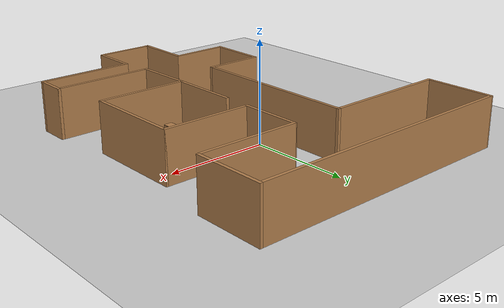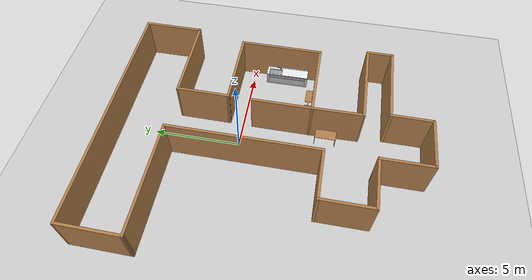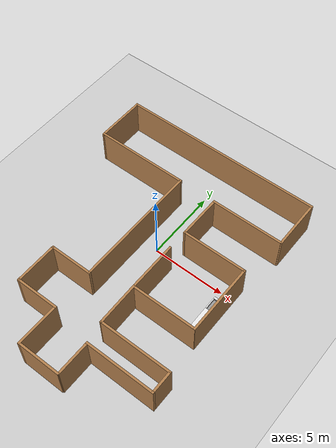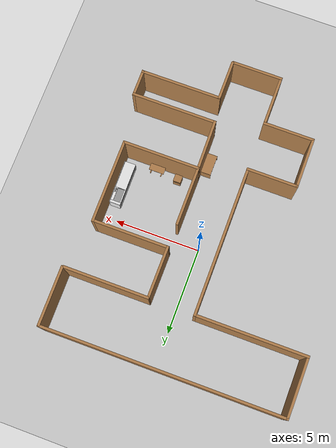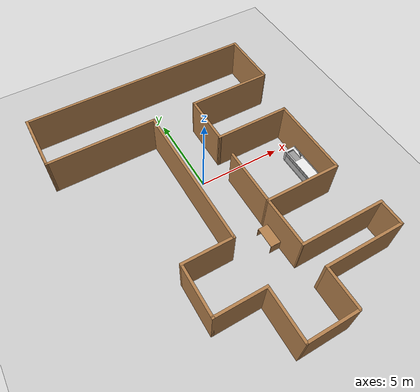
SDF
<sdf version="1.6">
 <world name="default">
  <model name="ground_plane">
   <static>1</static>
   <link name="link">
    <collision name="collision">
     <geometry><plane><normal>0 0 1</normal><size>100 100</size></plane></geometry>
     <surface><friction><ode><mu>100</mu><mu2>50</mu2></ode></friction></surface>
    </collision>
    <visual name="visual">
     <cast_shadows>0</cast_shadows>
     <geometry><plane><normal>0 0 1</normal><size>100 100</size></plane></geometry>
     <material>
      <script><uri>file://media/materials/scripts/gazebo.material</uri><name>Gazebo/Grey</name></script>
     </material>
    </visual>
   </link>
  </model>
  <model name="JUSTINAS_LAB3">
   <pose>-0.50094 -1.66418 0 0 -0 0</pose>
   <link name="Wall_102">
    <collision name="Wall_102_Collision">
     <geometry><box><size>6.5 0.15 2.5</size></box></geometry>
     <pose>0 0 1.25 0 -0 0</pose>
    </collision>
    <visual name="Wall_102_Visual">
     <pose>0 0 1.25 0 -0 0</pose>
     <geometry><box><size>6.5 0.15 2.5</size></box></geometry>
     <material>
      <script><uri>file://media/materials/scripts/gazebo.material</uri><name>Gazebo/Wood</name></script>
      <ambient>1 1 1 1</ambient>
     </material>
     <meta><layer>0</layer></meta>
    </visual>
    <pose>-3.78934 5.45538 0 0 -0 -6.2e-05</pose>
   </link>
   <link name="Wall_104">
    <collision name="Wall_104_Collision">
     <geometry><box><size>8.75 0.15 2.5</size></box></geometry>
     <pose>0 0 1.25 0 -0 0</pose>
    </collision>
    <visual name="Wall_104_Visual">
     <pose>0 0 1.25 0 -0 0</pose>
     <geometry><box><size>8.75 0.15 2.5</size></box></geometry>
     <material>
      <script><uri>file://media/materials/scripts/gazebo.material</uri><name>Gazebo/Wood</name></script>
      <ambient>1 1 1 1</ambient>
     </material>
     <meta><layer>0</layer></meta>
    </visual>
    <pose>-0.614387 1.15519 0 0 -0 -1.5708</pose>
   </link>
   <link name="Wall_106">
    <collision name="Wall_106_Collision">
     <geometry><box><size>3 0.15 2.5</size></box></geometry>
     <pose>0 0 1.25 0 -0 0</pose>
    </collision>
    <visual name="Wall_106_Visual">
     <pose>0 0 1.25 0 -0 0</pose>
     <geometry><box><size>3 0.15 2.5</size></box></geometry>
     <material>
      <script><uri>file://media/materials/scripts/gazebo.material</uri><name>Gazebo/Wood</name></script>
      <ambient>1 1 1 1</ambient>
     </material>
     <meta><layer>0</layer></meta>
    </visual>
    <pose>-2.03939 -3.14481 0 0 -0 3.14159</pose>
   </link>
   <link name="Wall_108">
    <collision name="Wall_108_Collision">
     <geometry><box><size>3 0.15 2.5</size></box></geometry>
     <pose>0 0 1.25 0 -0 0</pose>
    </collision>
    <visual name="Wall_108_Visual">
     <pose>0 0 1.25 0 -0 0</pose>
     <geometry><box><size>3 0.15 2.5</size></box></geometry>
     <material>
      <script><uri>file://media/materials/scripts/gazebo.material</uri><name>Gazebo/Wood</name></script>
      <ambient>1 1 1 1</ambient>
     </material>
     <meta><layer>0</layer></meta>
    </visual>
    <pose>-3.46439 -4.56981 0 0 -0 -1.5708</pose>
   </link>
   <link name="Wall_110">
    <collision name="Wall_110_Collision">
     <geometry><box><size>3 0.15 2.5</size></box></geometry>
     <pose>0 0 1.25 0 -0 0</pose>
    </collision>
    <visual name="Wall_110_Visual">
     <pose>0 0 1.25 0 -0 0</pose>
     <geometry><box><size>3 0.15 2.5</size></box></geometry>
     <material>
      <script><uri>file://media/materials/scripts/gazebo.material</uri><name>Gazebo/Wood</name></script>
      <ambient>1 1 1 1</ambient>
     </material>
     <meta><layer>0</layer></meta>
    </visual>
    <pose>-2.03939 -5.99481 0 0 -0 0</pose>
   </link>
   <link name="Wall_112">
    <collision name="Wall_112_Collision">
     <geometry><box><size>3 0.15 2.5</size></box></geometry>
     <pose>0 0 1.25 0 -0 0</pose>
    </collision>
    <visual name="Wall_112_Visual">
     <pose>0 0 1.25 0 -0 0</pose>
     <geometry><box><size>3 0.15 2.5</size></box></geometry>
     <material>
      <script><uri>file://media/materials/scripts/gazebo.material</uri><name>Gazebo/Wood</name></script>
      <ambient>1 1 1 1</ambient>
     </material>
     <meta><layer>0</layer></meta>
    </visual>
    <pose>-0.614387 -7.41981 0 0 -0 -1.5708</pose>
   </link>
   <link name="Wall_114">
    <collision name="Wall_114_Collision">
     <geometry><box><size>3 0.15 2.5</size></box></geometry>
     <pose>0 0 1.25 0 -0 0</pose>
    </collision>
    <visual name="Wall_114_Visual">
     <pose>0 0 1.25 0 -0 0</pose>
     <geometry><box><size>3 0.15 2.5</size></box></geometry>
     <material>
      <script><uri>file://media/materials/scripts/gazebo.material</uri><name>Gazebo/Wood</name></script>
      <ambient>1 1 1 1</ambient>
     </material>
     <meta><layer>0</layer></meta>
    </visual>
    <pose>0.810613 -8.84481 0 0 -0 0</pose>
   </link>
   <link name="Wall_116">
    <collision name="Wall_116_Collision">
     <geometry><box><size>3.53885 0.15 2.5</size></box></geometry>
     <pose>0 0 1.25 0 -0 0</pose>
    </collision>
    <visual name="Wall_116_Visual">
     <pose>0 0 1.25 0 -0 0</pose>
     <geometry><box><size>3.53885 0.15 2.5</size></box></geometry>
     <material>
      <script><uri>file://media/materials/scripts/gazebo.material</uri><name>Gazebo/Wood</name></script>
      <ambient>1 1 1 1</ambient>
     </material>
     <meta><layer>0</layer></meta>
    </visual>
    <pose>-6.95419 7.14997 0 0 -0 -1.57676</pose>
   </link>
   <link name="Wall_118">
    <collision name="Wall_118_Collision">
     <geometry><box><size>3.5 0.15 2.5</size></box></geometry>
     <pose>0 0 1.25 0 -0 0</pose>
    </collision>
    <visual name="Wall_118_Visual">
     <pose>0 0 1.25 0 -0 0</pose>
     <geometry><box><size>3.5 0.15 2.5</size></box></geometry>
     <material>
      <script><uri>file://media/materials/scripts/gazebo.material</uri><name>Gazebo/Wood</name></script>
      <ambient>1 1 1 1</ambient>
     </material>
     <meta><layer>0</layer></meta>
    </visual>
    <pose>6.96473 7.1669 0 0 -0 -1.5708</pose>
   </link>
   <link name="Wall_143">
    <collision name="Wall_143_Collision">
     <geometry><box><size>4.5 0.15 2.5</size></box></geometry>
     <pose>0 0 1.25 0 -0 0</pose>
    </collision>
    <visual name="Wall_143_Visual">
     <pose>0 0 1.25 0 -0 0</pose>
     <geometry><box><size>4.5 0.15 2.5</size></box></geometry>
     <material>
      <script><uri>file://media/materials/scripts/gazebo.material</uri><name>Gazebo/Wood</name></script>
      <ambient>1 1 1 1</ambient>
     </material>
     <meta><layer>0</layer></meta>
    </visual>
    <pose>4.1917 2.51558 0 0 -0 0</pose>
   </link>
   <link name="Wall_145">
    <collision name="Wall_145_Collision">
     <geometry><box><size>4.9 0.15 2.5</size></box></geometry>
     <pose>0 0 1.25 0 -0 0</pose>
    </collision>
    <visual name="Wall_145_Visual">
     <pose>0 0 1.25 0 -0 0</pose>
     <geometry><box><size>4.9 0.15 2.5</size></box></geometry>
     <material>
      <script><uri>file://media/materials/scripts/gazebo.material</uri><name>Gazebo/Wood</name></script>
      <ambient>1 1 1 1</ambient>
     </material>
     <meta><layer>0</layer></meta>
    </visual>
    <pose>6.3667 0.140581 0 0 -0 -1.5708</pose>
   </link>
   <link name="Wall_18">
    <collision name="Wall_18_Collision">
     <geometry><box><size>3.5 0.15 2.5</size></box></geometry>
     <pose>0 0 1.25 0 -0 0</pose>
    </collision>
    <visual name="Wall_18_Visual">
     <pose>0 0 1.25 0 -0 0</pose>
     <geometry><box><size>3.5 0.15 2.5</size></box></geometry>
     <material>
      <script><uri>file://media/materials/scripts/gazebo.material</uri><name>Gazebo/Wood</name></script>
      <ambient>1 1 1 1</ambient>
     </material>
     <meta><layer>0</layer></meta>
    </visual>
    <pose>1.99085 -0.569616 0 0 -0 1.5707</pose>
   </link>
   <link name="Wall_26">
    <collision name="Wall_26_Collision">
     <geometry><box><size>4.5 0.15 2.5</size></box></geometry>
     <pose>0 0 1.25 0 -0 0</pose>
    </collision>
    <visual name="Wall_26_Visual">
     <pose>0 0 1.25 0 -0 0</pose>
     <geometry><box><size>4.5 0.15 2.5</size></box></geometry>
     <material>
      <script><uri>file://media/materials/scripts/gazebo.material</uri><name>Gazebo/Wood</name></script>
      <ambient>1 1 1 1</ambient>
     </material>
     <meta><layer>0</layer></meta>
    </visual>
    <pose>4.1657 -2.24442 0 0 -0 0</pose>
   </link>
   <link name="Wall_32">
    <collision name="Wall_32_Collision">
     <geometry><box><size>3.08927 0.15 2.5</size></box></geometry>
     <pose>0 0 1.25 0 -0 0</pose>
    </collision>
    <visual name="Wall_32_Visual">
     <pose>0 0 1.25 0 -0 0</pose>
     <geometry><box><size>3.08927 0.15 2.5</size></box></geometry>
     <material>
      <script><uri>file://media/materials/scripts/gazebo.material</uri><name>Gazebo/Wood</name></script>
      <ambient>1 1 1 1</ambient>
     </material>
     <meta><layer>0</layer></meta>
    </visual>
    <pose>2.02616 3.98538 0 0 -0 1.56436</pose>
   </link>
   <link name="Wall_34">
    <collision name="Wall_34_Collision">
     <geometry><box><size>5 0.15 2.5</size></box></geometry>
     <pose>0 0 1.25 0 -0 0</pose>
    </collision>
    <visual name="Wall_34_Visual">
     <pose>0 0 1.25 0 -0 0</pose>
     <geometry><box><size>5 0.15 2.5</size></box></geometry>
     <material>
      <script><uri>file://media/materials/scripts/gazebo.material</uri><name>Gazebo/Wood</name></script>
      <ambient>1 1 1 1</ambient>
     </material>
     <meta><layer>0</layer></meta>
    </visual>
    <pose>4.46061 5.45519 0 0 -0 0</pose>
   </link>
   <link name="Wall_49">
    <collision name="Wall_49_Collision">
     <geometry><box><size>14.0588 0.15 2.5</size></box></geometry>
     <pose>0 0 1.25 0 -0 0</pose>
    </collision>
    <visual name="Wall_49_Visual">
     <pose>0 0 1.25 0 -0 0</pose>
     <geometry><box><size>14.0588 0.15 2.5</size></box></geometry>
     <material>
      <script><uri>file://media/materials/scripts/gazebo.material</uri><name>Gazebo/Wood</name></script>
      <ambient>1 1 1 1</ambient>
     </material>
     <meta><layer>0</layer></meta>
    </visual>
    <pose>0.010323 8.84313 0 0 -0 3.14141</pose>
   </link>
   <link name="Wall_65">
    <collision name="Wall_65_Collision">
     <geometry><box><size>3.00035 0.15 2.5</size></box></geometry>
     <pose>0 0 1.25 0 -0 0</pose>
    </collision>
    <visual name="Wall_65_Visual">
     <pose>0 0 1.25 0 -0 0</pose>
     <geometry><box><size>3.00035 0.15 2.5</size></box></geometry>
     <material>
      <script><uri>file://media/materials/scripts/gazebo.material</uri><name>Gazebo/Wood</name></script>
      <ambient>1 1 1 1</ambient>
     </material>
     <meta><layer>0</layer></meta>
    </visual>
    <pose>2.01316 -3.66962 0 0 -0 -1.55504</pose>
   </link>
   <link name="Wall_67">
    <collision name="Wall_67_Collision">
     <geometry><box><size>5 0.15 2.5</size></box></geometry>
     <pose>0 0 1.25 0 -0 0</pose>
    </collision>
    <visual name="Wall_67_Visual">
     <pose>0 0 1.25 0 -0 0</pose>
     <geometry><box><size>5 0.15 2.5</size></box></geometry>
     <material>
      <script><uri>file://media/materials/scripts/gazebo.material</uri><name>Gazebo/Wood</name></script>
      <ambient>1 1 1 1</ambient>
     </material>
     <meta><layer>0</layer></meta>
    </visual>
    <pose>4.46061 -5.09481 0 0 -0 0</pose>
   </link>
   <link name="Wall_69">
    <collision name="Wall_69_Collision">
     <geometry><box><size>1.6 0.15 2.5</size></box></geometry>
     <pose>0 0 1.25 0 -0 0</pose>
    </collision>
    <visual name="Wall_69_Visual">
     <pose>0 0 1.25 0 -0 0</pose>
     <geometry><box><size>1.6 0.15 2.5</size></box></geometry>
     <material>
      <script><uri>file://media/materials/scripts/gazebo.material</uri><name>Gazebo/Wood</name></script>
      <ambient>1 1 1 1</ambient>
     </material>
     <meta><layer>0</layer></meta>
    </visual>
    <pose>6.88561 -5.81981 0 0 -0 -1.5708</pose>
   </link>
   <link name="Wall_76">
    <collision name="Wall_76_Collision">
     <geometry><box><size>4.75 0.15 2.5</size></box></geometry>
     <pose>0 0 1.25 0 -0 0</pose>
    </collision>
    <visual name="Wall_76_Visual">
     <pose>0 0 1.25 0 -0 0</pose>
     <geometry><box><size>4.75 0.15 2.5</size></box></geometry>
     <material>
      <script><uri>file://media/materials/scripts/gazebo.material</uri><name>Gazebo/Wood</name></script>
      <ambient>1 1 1 1</ambient>
     </material>
     <meta><layer>0</layer></meta>
    </visual>
    <pose>4.58561 -6.54481 0 0 -0 3.14159</pose>
   </link>
   <link name="Wall_77">
    <collision name="Wall_77_Collision">
     <geometry><box><size>2.4 0.15 2.5</size></box></geometry>
     <pose>0 0 1.25 0 -0 0</pose>
    </collision>
    <visual name="Wall_77_Visual">
     <pose>0 0 1.25 0 -0 0</pose>
     <geometry><box><size>2.4 0.15 2.5</size></box></geometry>
     <material>
      <script><uri>file://media/materials/scripts/gazebo.material</uri><name>Gazebo/Wood</name></script>
      <ambient>1 1 1 1</ambient>
     </material>
     <meta><layer>0</layer></meta>
    </visual>
    <pose>2.28561 -7.66981 0 0 -0 -1.5708</pose>
   </link>
   <static>1</static>
  </model>
  <model name="office_desk">
   <link name="link">
    <inertial>
     <mass>10</mass>
     <inertia><ixx>1</ixx><ixy>0</ixy><ixz>0</ixz><iyy>1</iyy><iyz>0</iyz><izz>1</izz></inertia>
    </inertial>
    <visual name="top_board">
     <pose>-0.3 0.6 0.69 0 -0 0</pose>
     <geometry><box><size>0.6 1.2 0.02</size></box></geometry>
     <material>
      <script>
       <uri>model://base_materials/wood/scripts/wood.material</uri>
       <name>base_materials/dark_wood</name>
      </script>
     </material>
    </visual>
    <collision name="collision_top_board">
     <pose>-0.3 0.6 0.69 0 -0 0</pose>
     <geometry><box><size>0.6 1.2 0.02</size></box></geometry>
    </collision>
    <visual name="left_board">
     <pose>-0.3 0.01 0.34 0 -0 0</pose>
     <geometry><box><size>0.6 0.02 0.68</size></box></geometry>
     <material>
      <script>
       <uri>model://base_materials/wood/scripts/wood.material</uri>
       <name>base_materials/dark_wood</name>
      </script>
     </material>
    </visual>
    <collision name="collision_left_board">
     <pose>-0.3 0.01 0.34 0 -0 0</pose>
     <geometry><box><size>0.6 0.02 0.68</size></box></geometry>
    </collision>
    <visual name="right_board">
     <pose>-0.3 1.19 0.34 0 -0 0</pose>
     <geometry><box><size>0.6 0.02 0.68</size></box></geometry>
     <material>
      <script>
       <uri>model://base_materials/wood/scripts/wood.material</uri>
       <name>base_materials/dark_wood</name>
      </script>
     </material>
    </visual>
    <collision name="collision_right_board">
     <pose>-0.3 1.19 0.34 0 -0 0</pose>
     <geometry><box><size>0.6 0.02 0.68</size></box></geometry>
    </collision>
    <visual name="center_board">
     <pose>-0.14 0.6 0.49 0 -0 0</pose>
     <geometry><box><size>0.02 1.16 0.4</size></box></geometry>
     <material>
      <script>
       <uri>model://base_materials/wood/scripts/wood.material</uri>
       <name>base_materials/dark_wood</name>
      </script>
     </material>
    </visual>
    <collision name="ollision_center_board">
     <pose>-0.14 0.6 0.49 0 -0 0</pose>
     <geometry><box><size>0.02 1.16 0.4</size></box></geometry>
    </collision>
    <velocity_decay><linear>0</linear><angular>0</angular></velocity_decay>
   </link>
   <static>1</static>
   <pose>1.42953 -5.49497 0 0 -0 0</pose>
  </model>
  <model name="bed_table_2">
   <link name="link">
    <inertial>
     <pose>0 0.449 0.001 0 -0 0</pose>
     <mass>10</mass>
     <inertia><ixx>1</ixx><ixy>0</ixy><ixz>0</ixz><iyy>1</iyy><iyz>0</iyz><izz>1</izz></inertia>
    </inertial>
    <visual name="top_board">
     <pose>0 0.449 0.625 0 -0 0</pose>
     <geometry><box><size>0.398 0.898 0.02</size></box></geometry>
     <material>
      <script><uri>model://base_materials/wood/scripts/wood.material</uri><name>base_materials/wood</name></script>
     </material>
    </visual>
    <collision name="collision_top_board">
     <pose>0 0.449 0.625 0 -0 0</pose>
     <geometry><box><size>0.398 0.898 0.02</size></box></geometry>
    </collision>
    <visual name="right_pole">
     <pose>0 0.817 0.3515 0 -0 0</pose>
     <geometry><box><size>0.072 0.094 0.527</size></box></geometry>
     <material>
      <script><uri>model://base_materials/color/scripts</uri><name>hsr_color/grey</name></script>
     </material>
    </visual>
    <collision name="collision_right_pole">
     <pose>0 0.817 0.3515 0 -0 0</pose>
     <geometry><box><size>0.072 0.094 0.527</size></box></geometry>
    </collision>
    <visual name="right_bottom_pole">
     <pose>0 0.8225 0.044 0 -0 0</pose>
     <geometry><box><size>0.42 0.063 0.088</size></box></geometry>
     <material>
      <script><uri>model://base_materials/wood/scripts/wood.material</uri><name>base_materials/wood</name></script>
     </material>
    </visual>
    <collision name="collision_right_bottom_pole">
     <pose>0 0.8225 0.044 0 -0 0</pose>
     <geometry><box><size>0.42 0.063 0.088</size></box></geometry>
    </collision>
    <visual name="bottom_center_pole">
     <pose>0 0.502 0.03 0 -0 0</pose>
     <geometry><box><size>0.06 0.578 0.03</size></box></geometry>
     <material>
      <script><uri>model://base_materials/wood/scripts/wood.material</uri><name>base_materials/wood</name></script>
     </material>
    </visual>
    <collision name="collision_bottom_center_pole">
     <pose>0 0.502 0.03 0 -0 0</pose>
     <geometry><box><size>0.06 0.578 0.03</size></box></geometry>
    </collision>
    <visual name="left_bottom_pole">
     <pose>0 0.18 0.0325 0 -0 0</pose>
     <geometry><box><size>0.418 0.066 0.025</size></box></geometry>
     <material>
      <script><uri>model://base_materials/wood/scripts/wood.material</uri><name>base_materials/wood</name></script>
     </material>
    </visual>
    <collision name="collision_left_bottom_pole">
     <pose>0 0.18 0.0325 0 -0 0</pose>
     <geometry><box><size>0.418 0.066 0.025</size></box></geometry>
    </collision>
    <visual name="marker_0010">
     <pose>0 0.14 0.093 0 -0 0</pose>
     <geometry><box><size>0.09 0.001 0.09</size></box></geometry>
     <material>
      <script>
       <uri>model://bed_table/marker/0010/scripts</uri>
       <uri>model://bed_table/marker/0010/textures</uri>
       <name>Marker/0010</name>
      </script>
     </material>
    </visual>
    <collision name="collision_marker_0010">
     <pose>0 0.14 0.093 0 -0 0</pose>
     <geometry><box><size>0.09 0.001 0.09</size></box></geometry>
    </collision>
    <visual name="marker_0010_back_plate">
     <pose>0 0.146 0.093 0 -0 0</pose>
     <geometry><box><size>0.09 0.01 0.09</size></box></geometry>
     <material>
      <script><uri>model://base_materials/wood/scripts/wood.material</uri><name>base_materials/wood</name></script>
     </material>
    </visual>
    <collision name="collision_marker_0010_back_plate">
     <pose>0 0.146 0.093 0 -0 0</pose>
     <geometry><box><size>0.09 0.01 0.09</size></box></geometry>
    </collision>
    <velocity_decay><linear>0</linear><angular>0</angular></velocity_decay>
   </link>
   <static>1</static>
   <pose>3.397 -3.61722 0 0 0 -1.57177</pose>
  </model>
  <model name="sink-fix">
   <link name="link">
    <inertial>
     <mass>10</mass>
     <inertia><ixx>1</ixx><ixy>0</ixy><ixz>0</ixz><iyy>1</iyy><iyz>0</iyz><izz>1</izz></inertia>
    </inertial>
    <visual name="faucet1">
     <pose>-0.52 0.82 0.94 0 -0 0</pose>
     <geometry><cylinder><radius>0.027</radius><length>0.18</length></cylinder></geometry>
     <material>
      <script><uri>model://base_materials/color/scripts</uri><name>hsr_color/grey</name></script>
     </material>
    </visual>
    <collision name="collision_faucet1">
     <pose>-0.52 0.82 0.94 0 -0 0</pose>
     <geometry><cylinder><radius>0.027</radius><length>0.18</length></cylinder></geometry>
    </collision>
    <visual name="faucet2">
     <pose>-0.52 0.72 0.97 1.047 -0 0</pose>
     <geometry><cylinder><radius>0.024</radius><length>0.24</length></cylinder></geometry>
     <material>
      <script><uri>model://base_materials/color/scripts</uri><name>hsr_color/grey</name></script>
     </material>
    </visual>
    <collision name="collision_faucet2">
     <pose>-0.52 0.72 0.97 1.047 -0 0</pose>
     <geometry><cylinder><radius>0.024</radius><length>0.24</length></cylinder></geometry>
    </collision>
    <visual name="faucet3">
     <pose>-0.52 0.63 1 0 -0 0</pose>
     <geometry><cylinder><radius>0.015</radius><length>0.04</length></cylinder></geometry>
     <material>
      <script><uri>model://base_materials/color/scripts</uri><name>hsr_color/grey</name></script>
     </material>
    </visual>
    <collision name="collision_faucet3">
     <pose>-0.52 0.63 1 0 -0 0</pose>
     <geometry><cylinder><radius>0.015</radius><length>0.04</length></cylinder></geometry>
    </collision>
    <visual name="faucet_handle">
     <pose>-0.52 0.75 1.03 1.309 -0 0</pose>
     <geometry><box><size>0.048 0.01 0.11</size></box></geometry>
     <material>
      <script><uri>model://base_materials/color/scripts</uri><name>hsr_color/grey</name></script>
     </material>
    </visual>
    <collision name="collision_faucet_handle">
     <pose>-0.52 0.75 1.03 1.309 -0 0</pose>
     <geometry><box><size>0.048 0.01 0.11</size></box></geometry>
    </collision>
    <visual name="back_bucket">
     <pose>-0.57 0.545 0.74 0 -0 0</pose>
     <geometry><box><size>0.02 0.8 0.18</size></box></geometry>
     <material>
      <script><uri>model://base_materials/color/scripts</uri><name>hsr_color/grey</name></script>
     </material>
    </visual>
    <collision name="collision_back_bucket">
     <pose>-0.57 0.545 0.74 0 -0 0</pose>
     <geometry><box><size>0.02 0.8 0.18</size></box></geometry>
    </collision>
    <visual name="front_bucket">
     <pose>-0.06 0.545 0.74 0 -0 0</pose>
     <geometry><box><size>0.02 0.8 0.18</size></box></geometry>
     <material>
      <script><uri>model://base_materials/color/scripts</uri><name>hsr_color/grey</name></script>
     </material>
    </visual>
    <collision name="collision_fromt_bucket">
     <pose>-0.06 0.545 0.74 0 -0 0</pose>
     <geometry><box><size>0.02 0.8 0.18</size></box></geometry>
    </collision>
    <visual name="left_bucket">
     <pose>-0.32 0.14 0.74 0 -0 0</pose>
     <geometry><box><size>0.5 0.02 0.18</size></box></geometry>
     <material>
      <script><uri>model://base_materials/color/scripts</uri><name>hsr_color/grey</name></script>
     </material>
    </visual>
    <collision name="collision_left_bucket">
     <pose>-0.32 0.14 0.74 0 -0 0</pose>
     <geometry><box><size>0.5 0.02 0.18</size></box></geometry>
    </collision>
    <visual name="right_bucket">
     <pose>-0.32 0.96 0.74 0 -0 0</pose>
     <geometry><box><size>0.5 0.02 0.18</size></box></geometry>
     <material>
      <script><uri>model://base_materials/color/scripts</uri><name>hsr_color/grey</name></script>
     </material>
    </visual>
    <collision name="collision_right_bucket">
     <pose>-0.32 0.96 0.74 0 -0 0</pose>
     <geometry><box><size>0.5 0.02 0.18</size></box></geometry>
    </collision>
    <visual name="bottom_bucket">
     <pose>-0.33 0.555 0.695 0 -0 0</pose>
     <geometry><box><size>0.52 0.82 0.02</size></box></geometry>
     <material>
      <script><uri>model://base_materials/color/scripts</uri><name>hsr_color/grey</name></script>
     </material>
    </visual>
    <collision name="collision_bottom_bucket">
     <pose>-0.33 0.555 0.695 0 -0 0</pose>
     <geometry><box><size>0.52 0.82 0.02</size></box></geometry>
    </collision>
    <visual name="front_board">
     <pose>-0.04 1.275 0.425 0 -0 0</pose>
     <geometry><box><size>0.02 2.549 0.85</size></box></geometry>
     <material>
      <script><uri>model://base_materials/color/scripts</uri><name>hsr_color/white</name></script>
     </material>
    </visual>
    <collision name="collision_front_board">
     <pose>-0.04 1.275 0.425 0 -0 0</pose>
     <geometry><box><size>0.02 2.549 0.85</size></box></geometry>
    </collision>
    <visual name="back_board1">
     <pose>-0.625 1.275 0.425 0 -0 0</pose>
     <geometry><box><size>0.05 2.549 0.85</size></box></geometry>
     <material>
      <script><uri>model://base_materials/color/scripts</uri><name>hsr_color/white</name></script>
     </material>
    </visual>
    <collision name="collision_back_board1">
     <pose>-0.625 1.275 0.425 0 -0 0</pose>
     <geometry><box><size>0.05 2.549 0.85</size></box></geometry>
    </collision>
    <visual name="left_board">
     <pose>-0.34 0.025 0.425 0 -0 0</pose>
     <geometry><box><size>0.62 0.05 0.85</size></box></geometry>
     <material>
      <script><uri>model://base_materials/color/scripts</uri><name>hsr_color/white</name></script>
     </material>
    </visual>
    <collision name="collision_left_board">
     <pose>-0.34 0.025 0.425 0 -0 0</pose>
     <geometry><box><size>0.62 0.05 0.85</size></box></geometry>
    </collision>
    <visual name="right_board">
     <pose>-0.34 2.525 0.425 0 -0 0</pose>
     <geometry><box><size>0.62 0.05 0.85</size></box></geometry>
     <material>
      <script><uri>model://base_materials/color/scripts</uri><name>hsr_color/white</name></script>
     </material>
    </visual>
    <collision name="collision_right_board">
     <pose>-0.34 2.525 0.425 0 -0 0</pose>
     <geometry><box><size>0.62 0.05 0.85</size></box></geometry>
    </collision>
    <visual name="top_left_board">
     <pose>-0.325 0.0725 0.835 0 -0 0</pose>
     <geometry><box><size>0.65 0.146 0.04</size></box></geometry>
     <material>
      <script><uri>model://base_materials/color/scripts</uri><name>hsr_color/white</name></script>
     </material>
    </visual>
    <collision name="collision_top_left_board">
     <pose>-0.325 0.0725 0.835 0 -0 0</pose>
     <geometry><box><size>0.65 0.146 0.04</size></box></geometry>
    </collision>
    <visual name="top_right_board">
     <pose>-0.325 1.7475 0.835 0 -0 0</pose>
     <geometry><box><size>0.65 1.606 0.04</size></box></geometry>
     <material>
      <script><uri>model://base_materials/color/scripts</uri><name>hsr_color/white</name></script>
     </material>
    </visual>
    <collision name="collision_top_right_board">
     <pose>-0.325 1.7475 0.835 0 -0 0</pose>
     <geometry><box><size>0.65 1.606 0.04</size></box></geometry>
    </collision>
    <visual name="top_front_board">
     <pose>-0.035 0.545 0.835 0 -0 0</pose>
     <geometry><box><size>0.07 0.8 0.04</size></box></geometry>
     <material>
      <script><uri>model://base_materials/color/scripts</uri><name>hsr_color/white</name></script>
     </material>
    </visual>
    <collision name="collision_top_front_board">
     <pose>-0.035 0.545 0.835 0 -0 0</pose>
     <geometry><box><size>0.07 0.8 0.04</size></box></geometry>
    </collision>
    <visual name="top_back_board">
     <pose>-0.56 0.545 0.835 0 -0 0</pose>
     <geometry><box><size>0.18 0.8 0.04</size></box></geometry>
     <material>
      <script><uri>model://base_materials/color/scripts</uri><name>hsr_color/white</name></script>
     </material>
    </visual>
    <collision name="collision_top_back_board">
     <pose>-0.56 0.545 0.835 0 -0 0</pose>
     <geometry><box><size>0.18 0.8 0.04</size></box></geometry>
    </collision>
    <visual name="back_board2">
     <pose>-0.64 1.275 0.895 0 -0 0</pose>
     <geometry><box><size>0.02 2.55 0.08</size></box></geometry>
     <material>
      <script><uri>model://base_materials/color/scripts</uri><name>hsr_color/white</name></script>
     </material>
    </visual>
    <collision name="collision_back_board2">
     <pose>-0.64 1.275 0.895 0 -0 0</pose>
     <geometry><box><size>0.02 2.55 0.08</size></box></geometry>
    </collision>
    <visual name="handle1_1">
     <pose>-0.015 1.275 0.81 0 -0 0</pose>
     <geometry><box><size>0.03 2.55 0.005</size></box></geometry>
     <material>
      <script><uri>model://base_materials/color/scripts</uri><name>hsr_color/grey</name></script>
     </material>
    </visual>
    <collision name="collision_handle1_1">
     <pose>-0.015 1.275 0.81 0 -0 0</pose>
     <geometry><box><size>0.03 2.55 0.005</size></box></geometry>
    </collision>
    <visual name="handle1_2">
     <pose>-0.029 1.275 0.7925 0 -0 0</pose>
     <geometry><box><size>0.005 2.55 0.04</size></box></geometry>
     <material>
      <script><uri>model://base_materials/color/scripts</uri><name>hsr_color/grey</name></script>
     </material>
    </visual>
    <collision name="collision_handle1_2">
     <pose>-0.029 1.275 0.7925 0 -0 0</pose>
     <geometry><box><size>0.005 2.55 0.04</size></box></geometry>
    </collision>
    <visual name="handle1_3">
     <pose>-0.015 1.275 0.77 0 -0 0</pose>
     <geometry><box><size>0.03 2.55 0.005</size></box></geometry>
     <material>
      <script><uri>model://base_materials/color/scripts</uri><name>hsr_color/grey</name></script>
     </material>
    </visual>
    <collision name="collision_handle1_3">
     <pose>-0.015 1.275 0.77 0 -0 0</pose>
     <geometry><box><size>0.03 2.55 0.005</size></box></geometry>
    </collision>
    <visual name="front_left_drawer">
     <pose>-0.015 0.0725 0.44 0 -0 0</pose>
     <geometry><box><size>0.03 0.145 0.66</size></box></geometry>
     <material>
      <script><uri>model://sink-fix/scripts</uri><uri>model://sink-fix/textures</uri><name>sink/001</name></script>
     </material>
    </visual>
    <collision name="collision_left_drawer">
     <pose>-0.015 0.0725 0.44 0 -0 0</pose>
     <geometry><box><size>0.03 0.145 0.66</size></box></geometry>
    </collision>
    <visual name="front_right_drawer">
     <pose>-0.015 2.4725 0.44 0 -0 0</pose>
     <geometry><box><size>0.03 0.145 0.66</size></box></geometry>
     <material>
      <script><uri>model://sink-fix/scripts</uri><uri>model://sink-fix/textures</uri><name>sink/001</name></script>
     </material>
    </visual>
    <collision name="collision_right_drawer">
     <pose>-0.015 2.4725 0.44 0 -0 0</pose>
     <geometry><box><size>0.03 0.145 0.66</size></box></geometry>
    </collision>
    <visual name="front_top_drawer">
     <pose>-0.015 1.275 0.6975 0 -0 0</pose>
     <geometry><box><size>0.03 2.25 0.145</size></box></geometry>
     <material>
      <script><uri>model://sink-fix/scripts</uri><uri>model://sink-fix/textures</uri><name>sink/001</name></script>
     </material>
    </visual>
    <collision name="collision_top_drawer">
     <pose>-0.015 1.275 0.6975 0 -0 0</pose>
     <geometry><box><size>0.03 2.25 0.145</size></box></geometry>
    </collision>
    <visual name="handle2_1">
     <pose>-0.015 1.275 0.62 0 -0 0</pose>
     <geometry><box><size>0.03 2.25 0.005</size></box></geometry>
     <material>
      <script><uri>model://base_materials/color/scripts</uri><name>hsr_color/grey</name></script>
     </material>
    </visual>
    <collision name="collision_handle2_1">
     <pose>-0.015 1.275 0.62 0 -0 0</pose>
     <geometry><box><size>0.03 2.25 0.005</size></box></geometry>
    </collision>
    <visual name="handle2_2">
     <pose>-0.029 1.275 0.6025 0 -0 0</pose>
     <geometry><box><size>0.005 2.25 0.04</size></box></geometry>
     <material>
      <script><uri>model://base_materials/color/scripts</uri><name>hsr_color/grey</name></script>
     </material>
    </visual>
    <collision name="collision_handle2_2">
     <pose>-0.029 1.275 0.6025 0 -0 0</pose>
     <geometry><box><size>0.005 2.25 0.04</size></box></geometry>
    </collision>
    <visual name="handle2_3">
     <pose>-0.015 1.275 0.58 0 -0 0</pose>
     <geometry><box><size>0.03 2.25 0.005</size></box></geometry>
     <material>
      <script><uri>model://base_materials/color/scripts</uri><name>hsr_color/grey</name></script>
     </material>
    </visual>
    <collision name="collision_handle2_3">
     <pose>-0.015 1.275 0.58 0 -0 0</pose>
     <geometry><box><size>0.03 2.25 0.005</size></box></geometry>
    </collision>
    <visual name="front_bottom_drawer">
     <pose>-0.015 1.275 0.345 0 -0 0</pose>
     <geometry><box><size>0.03 2.25 0.47</size></box></geometry>
     <material>
      <script><uri>model://sink-fix/scripts</uri><uri>model://sink-fix/textures</uri><name>sink/001</name></script>
     </material>
    </visual>
    <collision name="collision_bottom_drawer">
     <pose>-0.015 1.275 0.345 0 -0 0</pose>
     <geometry><box><size>0.03 2.25 0.47</size></box></geometry>
    </collision>
    <velocity_decay><linear>0</linear><angular>0</angular></velocity_decay>
   </link>
   <static>1</static>
   <pose>5.05326 -0.78986 0 0 0 -3.13543</pose>
  </model>
  <model name="wagon_2">
   <link name="link">
    <inertial>
     <mass>10</mass>
     <inertia><ixx>1</ixx><ixy>0</ixy><ixz>0</ixz><iyy>1</iyy><iyz>0</iyz><izz>1</izz></inertia>
    </inertial>
    <visual name="left_board">
     <pose>-0.2325 0.01 0.345 0 -0 0</pose>
     <geometry><box><size>0.415 0.02 0.59</size></box></geometry>
     <material>
      <script><uri>model://base_materials/wood/scripts/wood.material</uri><name>base_materials/wood</name></script>
     </material>
    </visual>
    <collision name="collision_left_board">
     <pose>-0.2325 0.01 0.345 0 -0 0</pose>
     <geometry><box><size>0.415 0.02 0.59</size></box></geometry>
    </collision>
    <visual name="right_board">
     <pose>-0.2325 0.4325 0.345 0 -0 0</pose>
     <geometry><box><size>0.415 0.02 0.59</size></box></geometry>
     <material>
      <script><uri>model://base_materials/wood/scripts/wood.material</uri><name>base_materials/wood</name></script>
     </material>
    </visual>
    <collision name="collision_right_board">
     <pose>-0.2325 0.4325 0.345 0 -0 0</pose>
     <geometry><box><size>0.415 0.02 0.59</size></box></geometry>
    </collision>
    <visual name="top_board">
     <pose>-0.22 0.2225 0.655 0 -0 0</pose>
     <geometry><box><size>0.44 0.445 0.03</size></box></geometry>
     <material>
      <script><uri>model://base_materials/wood/scripts/wood.material</uri><name>base_materials/wood</name></script>
     </material>
    </visual>
    <collision name="collision_top_board">
     <pose>-0.22 0.2225 0.655 0 -0 0</pose>
     <geometry><box><size>0.44 0.445 0.03</size></box></geometry>
    </collision>
    <visual name="back_board">
     <pose>-0.425 0.2225 0.345 0 -0 0</pose>
     <geometry><box><size>0.02 0.405 0.59</size></box></geometry>
     <material>
      <script><uri>model://base_materials/wood/scripts/wood.material</uri><name>base_materials/wood</name></script>
     </material>
    </visual>
    <collision name="collision_back_board">
     <pose>-0.425 0.2225 0.345 0 -0 0</pose>
     <geometry><box><size>0.02 0.405 0.59</size></box></geometry>
    </collision>
    <visual name="bottom_board">
     <pose>-0.2325 0.2225 0.06 0 -0 0</pose>
     <geometry><box><size>0.415 0.405 0.02</size></box></geometry>
     <material>
      <script><uri>model://base_materials/wood/scripts/wood.material</uri><name>base_materials/wood</name></script>
     </material>
    </visual>
    <collision name="collision_bottom_board">
     <pose>-0.2325 0.2225 0.06 0 -0 0</pose>
     <geometry><box><size>0.415 0.405 0.02</size></box></geometry>
    </collision>
    <visual name="1st_drawer">
     <pose>-0.0125 0.2225 0.57 0 -0 0</pose>
     <geometry><box><size>0.025 0.445 0.14</size></box></geometry>
     <material>
      <script><uri>model://base_materials/wood/scripts/wood.material</uri><name>base_materials/wood</name></script>
     </material>
    </visual>
    <collision name="collision_1st_drawer">
     <pose>-0.0125 0.2225 0.57 0 -0 0</pose>
     <geometry><box><size>0.025 0.445 0.14</size></box></geometry>
    </collision>
    <visual name="1st_drawer_handle_l1">
     <pose>0.0115 0.1895 0.6 3.14159 1.57079 3.14159</pose>
     <geometry><cylinder><radius>0.007</radius><length>0.023</length></cylinder></geometry>
     <material>
      <ambient>0.18431 0.3098 0.3098 1</ambient>
      <diffuse>0.18431 0.3098 0.3098 1</diffuse>
      <specular>0.1 0.1 0.1 1</specular>
     </material>
    </visual>
    <collision name="collision_1st_drawer_handle_l1">
     <pose>0.0115 0.1895 0.6 3.14159 1.57079 3.14159</pose>
     <geometry><cylinder><radius>0.007</radius><length>0.023</length></cylinder></geometry>
    </collision>
    <visual name="1st_drawer_handle_l2">
     <pose>0.023 0.1895 0.6 0 -0 0</pose>
     <geometry><sphere><radius>0.007</radius></sphere></geometry>
     <material>
      <ambient>0.18431 0.3098 0.3098 1</ambient>
      <diffuse>0.18431 0.3098 0.3098 1</diffuse>
      <specular>0.1 0.1 0.1 1</specular>
     </material>
    </visual>
    <collision name="collision_1st_drawer_handle_l2">
     <pose>0.023 0.1895 0.6 0 -0 0</pose>
     <geometry><sphere><radius>0.007</radius></sphere></geometry>
    </collision>
    <visual name="1st_drawer_handle_r1">
     <pose>0.0115 0.2555 0.6 3.14159 1.57079 3.14159</pose>
     <geometry><cylinder><radius>0.007</radius><length>0.023</length></cylinder></geometry>
     <material>
      <ambient>0.18431 0.3098 0.3098 1</ambient>
      <diffuse>0.18431 0.3098 0.3098 1</diffuse>
      <specular>0.1 0.1 0.1 1</specular>
     </material>
    </visual>
    <collision name="collision_1st_drawer_handle_r1">
     <pose>0.0115 0.2555 0.6 3.14159 1.57079 3.14159</pose>
     <geometry><cylinder><radius>0.007</radius><length>0.023</length></cylinder></geometry>
    </collision>
    <visual name="1st_drawer_handle_r2">
     <pose>0.023 0.2555 0.6 0 -0 0</pose>
     <geometry><sphere><radius>0.007</radius></sphere></geometry>
     <material>
      <ambient>0.18431 0.3098 0.3098 1</ambient>
      <diffuse>0.18431 0.3098 0.3098 1</diffuse>
      <specular>0.1 0.1 0.1 1</specular>
     </material>
    </visual>
    <collision name="collision_1st_drawer_handle_r2">
     <pose>0.023 0.2555 0.6 0 -0 0</pose>
     <geometry><sphere><radius>0.007</radius></sphere></geometry>
    </collision>
    <visual name="1st_drawer_handle_center">
     <pose>0.023 0.2225 0.6 1.5708 -0 0</pose>
     <geometry><cylinder><radius>0.007</radius><length>0.066</length></cylinder></geometry>
     <material>
      <ambient>0.18431 0.3098 0.3098 1</ambient>
      <diffuse>0.18431 0.3098 0.3098 1</diffuse>
      <specular>0.1 0.1 0.1 1</specular>
     </material>
    </visual>
    <collision name="collision_1st_drawer_handle_center">
     <pose>0.023 0.2225 0.6 1.5708 -0 0</pose>
     <geometry><cylinder><radius>0.007</radius><length>0.066</length></cylinder></geometry>
    </collision>
    <visual name="2nd_drawer">
     <pose>-0.0125 0.2225 0.275 0 -0 0</pose>
     <geometry><box><size>0.025 0.445 0.45</size></box></geometry>
     <material>
      <script><uri>model://base_materials/wood/scripts/wood.material</uri><name>base_materials/wood</name></script>
     </material>
    </visual>
    <collision name="collision_2nd_drawer">
     <pose>-0.0125 0.2225 0.275 0 -0 0</pose>
     <geometry><box><size>0.025 0.445 0.45</size></box></geometry>
    </collision>
    <visual name="2nd_drawer_handle_top1">
     <pose>0.0115 0.04 0.47 3.14159 1.57079 3.14159</pose>
     <geometry><cylinder><radius>0.007</radius><length>0.023</length></cylinder></geometry>
     <material>
      <ambient>0.18431 0.3098 0.3098 1</ambient>
      <diffuse>0.18431 0.3098 0.3098 1</diffuse>
      <specular>0.1 0.1 0.1 1</specular>
     </material>
    </visual>
    <collision name="collision_2nd_drawer_handle_top1">
     <pose>0.0115 0.04 0.47 3.14159 1.57079 3.14159</pose>
     <geometry><cylinder><radius>0.007</radius><length>0.023</length></cylinder></geometry>
    </collision>
    <visual name="2nd_drawer_handle_top2">
     <pose>0.023 0.04 0.47 0 -0 0</pose>
     <geometry><sphere><radius>0.007</radius></sphere></geometry>
     <material>
      <ambient>0.18431 0.3098 0.3098 1</ambient>
      <diffuse>0.18431 0.3098 0.3098 1</diffuse>
      <specular>0.1 0.1 0.1 1</specular>
     </material>
    </visual>
    <collision name="2nd_drawer_handle_top2">
     <pose>0.023 0.04 0.47 0 -0 0</pose>
     <geometry><sphere><radius>0.007</radius></sphere></geometry>
    </collision>
    <visual name="2nd_drawer_handle_bottom1">
     <pose>0.0115 0.04 0.404 3.14159 1.57079 3.14159</pose>
     <geometry><cylinder><radius>0.007</radius><length>0.023</length></cylinder></geometry>
     <material>
      <ambient>0.18431 0.3098 0.3098 1</ambient>
      <diffuse>0.18431 0.3098 0.3098 1</diffuse>
      <specular>0.1 0.1 0.1 1</specular>
     </material>
    </visual>
    <collision name="collision_2nd_drawer_handle_bottom1">
     <pose>0.0115 0.04 0.404 3.14159 1.57079 3.14159</pose>
     <geometry><cylinder><radius>0.007</radius><length>0.023</length></cylinder></geometry>
    </collision>
    <visual name="2nd_drawer_handle_bottom2">
     <pose>0.023 0.04 0.404 0 -0 0</pose>
     <geometry><sphere><radius>0.007</radius></sphere></geometry>
     <material>
      <ambient>0.18431 0.3098 0.3098 1</ambient>
      <diffuse>0.18431 0.3098 0.3098 1</diffuse>
      <specular>0.1 0.1 0.1 1</specular>
     </material>
    </visual>
    <collision name="2nd_drawer_handle_bottom2">
     <pose>0.023 0.04 0.404 0 -0 0</pose>
     <geometry><sphere><radius>0.007</radius></sphere></geometry>
    </collision>
    <visual name="2nd_drawer_handle_center">
     <pose>0.023 0.04 0.437 0 -0 0</pose>
     <geometry><cylinder><radius>0.007</radius><length>0.066</length></cylinder></geometry>
     <material>
      <ambient>0.18431 0.3098 0.3098 1</ambient>
      <diffuse>0.18431 0.3098 0.3098 1</diffuse>
      <specular>0.1 0.1 0.1 1</specular>
     </material>
    </visual>
    <collision name="collision_2nd_drawer_handle_center">
     <pose>0.023 0.04 0.437 0 -0 0</pose>
     <geometry><cylinder><radius>0.007</radius><length>0.066</length></cylinder></geometry>
    </collision>
    <visual name="left_front_caster">
     <pose>-0.07 0.025 0.025 3.14159 1.57079 3.14159</pose>
     <geometry><cylinder><radius>0.025</radius><length>0.035</length></cylinder></geometry>
     <material><script><name>Gazebo/Black</name><uri>__default__</uri></script></material>
    </visual>
    <collision name="collision_left_front_caster">
     <pose>-0.07 0.025 0.025 3.14159 1.57079 3.14159</pose>
     <geometry><cylinder><radius>0.025</radius><length>0.035</length></cylinder></geometry>
    </collision>
    <visual name="right_front_caster">
     <pose>-0.07 0.42 0.025 3.14159 1.57079 3.14159</pose>
     <geometry><cylinder><radius>0.025</radius><length>0.035</length></cylinder></geometry>
     <material><script><name>Gazebo/Black</name><uri>__default__</uri></script></material>
    </visual>
    <collision name="collision_right_front_caster">
     <pose>-0.07 0.42 0.025 3.14159 1.57079 3.14159</pose>
     <geometry><cylinder><radius>0.025</radius><length>0.035</length></cylinder></geometry>
    </collision>
    <visual name="left_back_caster">
     <pose>-0.39 0.025 0.025 3.14159 1.57079 3.14159</pose>
     <geometry><cylinder><radius>0.025</radius><length>0.035</length></cylinder></geometry>
     <material><script><name>Gazebo/Black</name><uri>__default__</uri></script></material>
    </visual>
    <collision name="collision_left_back_caster">
     <pose>-0.39 0.025 0.025 3.14159 1.57079 3.14159</pose>
     <geometry><cylinder><radius>0.025</radius><length>0.035</length></cylinder></geometry>
    </collision>
    <visual name="right_back_caster">
     <pose>-0.39 0.42 0.025 3.14159 1.57079 3.14159</pose>
     <geometry><cylinder><radius>0.025</radius><length>0.035</length></cylinder></geometry>
     <material><script><name>Gazebo/Black</name><uri>__default__</uri></script></material>
    </visual>
    <collision name="collision_right_back_caster">
     <pose>-0.39 0.42 0.025 3.14159 1.57079 3.14159</pose>
     <geometry><cylinder><radius>0.025</radius><length>0.035</length></cylinder></geometry>
    </collision>
    <velocity_decay><linear>0</linear><angular>0</angular></velocity_decay>
   </link>
   <static>1</static>
   <pose>2.74568 -3.24639 0 0 -0 1.57023</pose>
  </model>
 </world>
</sdf>
